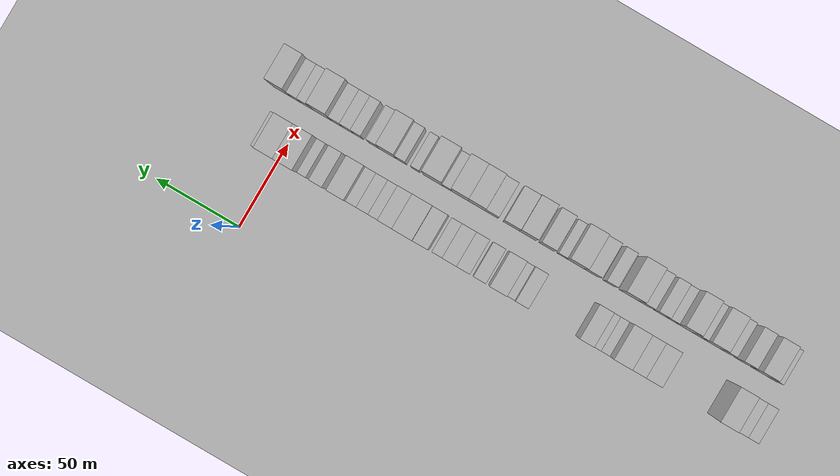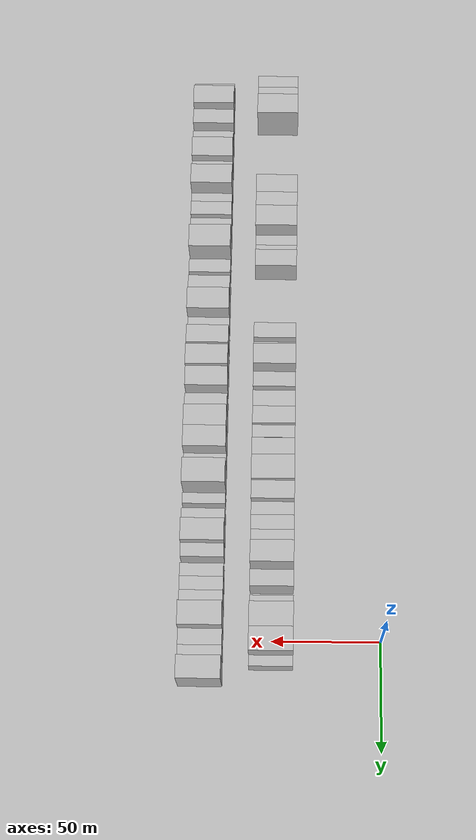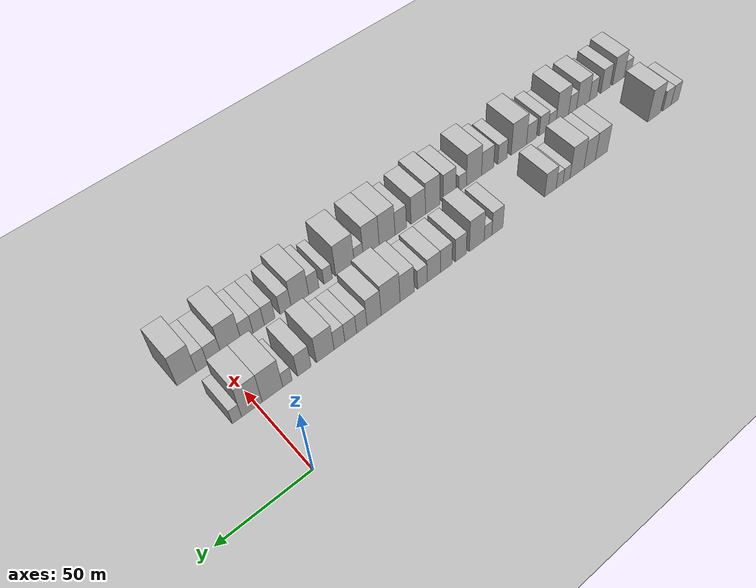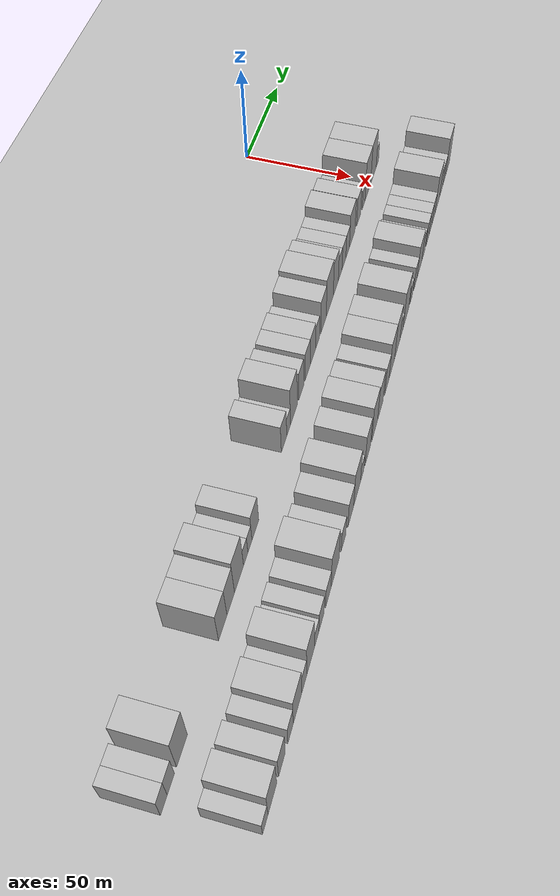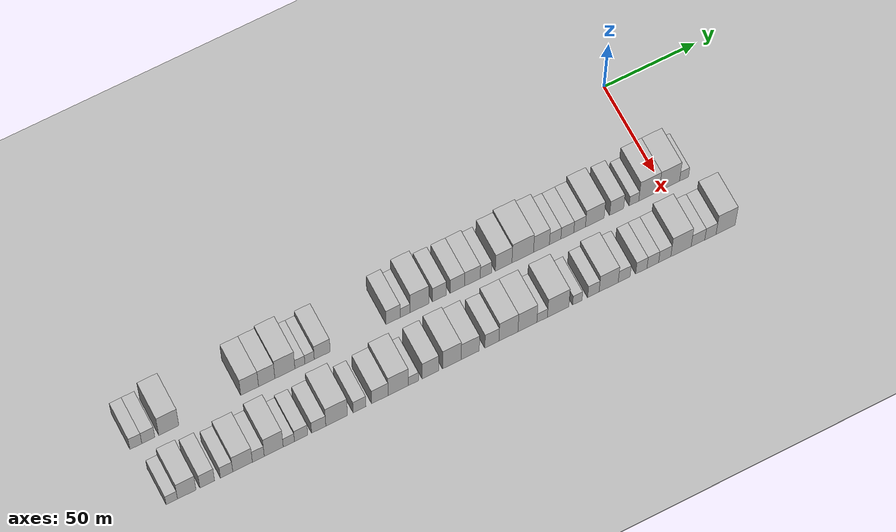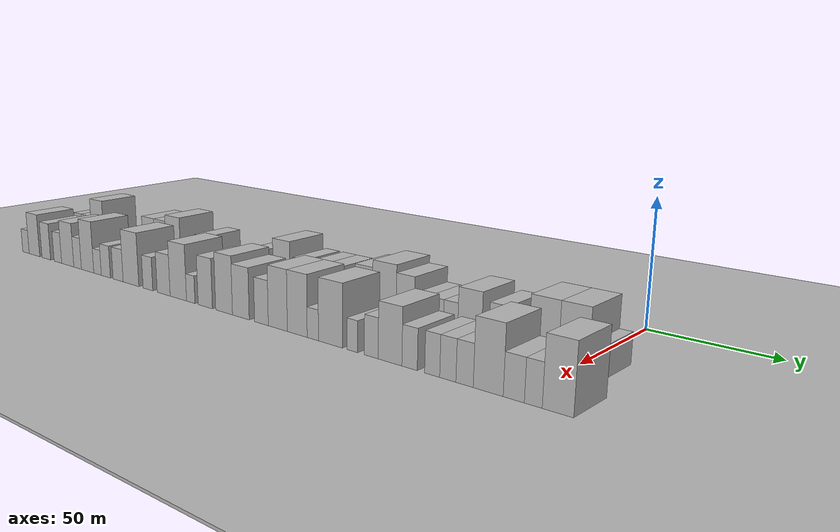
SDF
<sdf version="1.6">
 <world name="default">
  <include><name>ground_plane_1</name><uri>model://HANNAS_ground_plane</uri></include>
  <include>
   <name>ground_plane_2</name>
   <uri>model://HANNAS_ground_plane</uri>
   <pose>100 0 0  0 0 0</pose>
  </include>
  <model name="building_1">
   <static>1</static>
   <pose>50.0000 -280.9047 0 0.000000 0.000000 0.000000</pose>
   <link name="link">
    <pose>0 0 7.50 0 0 0</pose>
    <collision name="collision"><geometry><box><size>20.0000 6.1906 15.0000</size></box></geometry></collision>
    <visual name="visual">
     <cast_shadows>0</cast_shadows>
     <geometry><box><size>20.0000 6.1906 15.0000</size></box></geometry>
     <material>
      <script>
       <uri>model://HANNAS_wall/materials/scripts</uri>
       <uri>model://HANNAS_wall/materials/textures</uri>
       <name>vrc/HANNAS_wall</name>
      </script>
     </material>
    </visual>
   </link>
  </model>
  <model name="building_2">
   <static>1</static>
   <pose>50.0000 -274.4337 0 0.000000 0.000000 0.000000</pose>
   <link name="link">
    <pose>0 0 7.50 0 0 0</pose>
    <collision name="collision"><geometry><box><size>20.0000 6.7513 15.0000</size></box></geometry></collision>
    <visual name="visual">
     <cast_shadows>0</cast_shadows>
     <geometry><box><size>20.0000 6.7513 15.0000</size></box></geometry>
     <material>
      <script>
       <uri>model://HANNAS_wall/materials/scripts</uri>
       <uri>model://HANNAS_wall/materials/textures</uri>
       <name>vrc/HANNAS_wall</name>
      </script>
     </material>
    </visual>
   </link>
  </model>
  <model name="building_3">
   <static>1</static>
   <pose>50.0000 -263.8113 0 0.000000 0.000000 0.000000</pose>
   <link name="link">
    <pose>0 0 12.00 0 0 0</pose>
    <collision name="collision"><geometry><box><size>20.0000 10.4937 24.0000</size></box></geometry></collision>
    <visual name="visual">
     <cast_shadows>0</cast_shadows>
     <geometry><box><size>20.0000 10.4937 24.0000</size></box></geometry>
     <material>
      <script>
       <uri>model://HANNAS_wall/materials/scripts</uri>
       <uri>model://HANNAS_wall/materials/textures</uri>
       <name>vrc/HANNAS_wall</name>
      </script>
     </material>
    </visual>
   </link>
  </model>
  <model name="building_4">
   <static>1</static>
   <pose>50.0000 -221.5287 0 0.000000 0.000000 0.000000</pose>
   <link name="link">
    <pose>0 0 10.50 0 0 0</pose>
    <collision name="collision"><geometry><box><size>20.0000 9.3572 21.0000</size></box></geometry></collision>
    <visual name="visual">
     <cast_shadows>0</cast_shadows>
     <geometry><box><size>20.0000 9.3572 21.0000</size></box></geometry>
     <material>
      <script>
       <uri>model://HANNAS_wall/materials/scripts</uri>
       <uri>model://HANNAS_wall/materials/textures</uri>
       <name>vrc/HANNAS_wall</name>
      </script>
     </material>
    </visual>
   </link>
  </model>
  <model name="building_5">
   <static>1</static>
   <pose>50.0000 -212.5647 0 0.000000 0.000000 0.000000</pose>
   <link name="link">
    <pose>0 0 10.50 0 0 0</pose>
    <collision name="collision"><geometry><box><size>20.0000 8.5709 21.0000</size></box></geometry></collision>
    <visual name="visual">
     <cast_shadows>0</cast_shadows>
     <geometry><box><size>20.0000 8.5709 21.0000</size></box></geometry>
     <material>
      <script>
       <uri>model://HANNAS_wall/materials/scripts</uri>
       <uri>model://HANNAS_wall/materials/textures</uri>
       <name>vrc/HANNAS_wall</name>
      </script>
     </material>
    </visual>
   </link>
  </model>
  <model name="building_6">
   <static>1</static>
   <pose>50.0000 -203.0101 0 0.000000 0.000000 0.000000</pose>
   <link name="link">
    <pose>0 0 12.00 0 0 0</pose>
    <collision name="collision"><geometry><box><size>20.0000 10.5382 24.0000</size></box></geometry></collision>
    <visual name="visual">
     <cast_shadows>0</cast_shadows>
     <geometry><box><size>20.0000 10.5382 24.0000</size></box></geometry>
     <material>
      <script>
       <uri>model://HANNAS_wall/materials/scripts</uri>
       <uri>model://HANNAS_wall/materials/textures</uri>
       <name>vrc/HANNAS_wall</name>
      </script>
     </material>
    </visual>
   </link>
  </model>
  <model name="building_7">
   <static>1</static>
   <pose>50.0000 -195.1155 0 0.000000 0.000000 0.000000</pose>
   <link name="link">
    <pose>0 0 6.00 0 0 0</pose>
    <collision name="collision"><geometry><box><size>20.0000 5.2510 12.0000</size></box></geometry></collision>
    <visual name="visual">
     <cast_shadows>0</cast_shadows>
     <geometry><box><size>20.0000 5.2510 12.0000</size></box></geometry>
     <material>
      <script>
       <uri>model://HANNAS_wall/materials/scripts</uri>
       <uri>model://HANNAS_wall/materials/textures</uri>
       <name>vrc/HANNAS_wall</name>
      </script>
     </material>
    </visual>
   </link>
  </model>
  <model name="building_8">
   <static>1</static>
   <pose>50.0000 -190.0040 0 0.000000 0.000000 0.000000</pose>
   <link name="link">
    <pose>0 0 6.00 0 0 0</pose>
    <collision name="collision"><geometry><box><size>20.0000 4.9719 12.0000</size></box></geometry></collision>
    <visual name="visual">
     <cast_shadows>0</cast_shadows>
     <geometry><box><size>20.0000 4.9719 12.0000</size></box></geometry>
     <material>
      <script>
       <uri>model://HANNAS_wall/materials/scripts</uri>
       <uri>model://HANNAS_wall/materials/textures</uri>
       <name>vrc/HANNAS_wall</name>
      </script>
     </material>
    </visual>
   </link>
  </model>
  <model name="building_9">
   <static>1</static>
   <pose>50.0000 -183.3172 0 0.000000 0.000000 0.000000</pose>
   <link name="link">
    <pose>0 0 9.00 0 0 0</pose>
    <collision name="collision"><geometry><box><size>20.0000 8.4017 18.0000</size></box></geometry></collision>
    <visual name="visual">
     <cast_shadows>0</cast_shadows>
     <geometry><box><size>20.0000 8.4017 18.0000</size></box></geometry>
     <material>
      <script>
       <uri>model://HANNAS_wall/materials/scripts</uri>
       <uri>model://HANNAS_wall/materials/textures</uri>
       <name>vrc/HANNAS_wall</name>
      </script>
     </material>
    </visual>
   </link>
  </model>
  <model name="building_10">
   <static>1</static>
   <pose>50.0000 -145.7531 0 0.000000 0.000000 0.000000</pose>
   <link name="link">
    <pose>0 0 9.00 0 0 0</pose>
    <collision name="collision"><geometry><box><size>20.0000 7.5755 18.0000</size></box></geometry></collision>
    <visual name="visual">
     <cast_shadows>0</cast_shadows>
     <geometry><box><size>20.0000 7.5755 18.0000</size></box></geometry>
     <material>
      <script>
       <uri>model://HANNAS_wall/materials/scripts</uri>
       <uri>model://HANNAS_wall/materials/textures</uri>
       <name>vrc/HANNAS_wall</name>
      </script>
     </material>
    </visual>
   </link>
  </model>
  <model name="building_11">
   <static>1</static>
   <pose>50.0000 -139.3310 0 0.000000 0.000000 0.000000</pose>
   <link name="link">
    <pose>0 0 6.00 0 0 0</pose>
    <collision name="collision"><geometry><box><size>20.0000 5.2685 12.0000</size></box></geometry></collision>
    <visual name="visual">
     <cast_shadows>0</cast_shadows>
     <geometry><box><size>20.0000 5.2685 12.0000</size></box></geometry>
     <material>
      <script>
       <uri>model://HANNAS_wall/materials/scripts</uri>
       <uri>model://HANNAS_wall/materials/textures</uri>
       <name>vrc/HANNAS_wall</name>
      </script>
     </material>
    </visual>
   </link>
  </model>
  <model name="building_12">
   <static>1</static>
   <pose>50.0000 -131.7397 0 0.000000 0.000000 0.000000</pose>
   <link name="link">
    <pose>0 0 12.00 0 0 0</pose>
    <collision name="collision"><geometry><box><size>20.0000 9.9141 24.0000</size></box></geometry></collision>
    <visual name="visual">
     <cast_shadows>0</cast_shadows>
     <geometry><box><size>20.0000 9.9141 24.0000</size></box></geometry>
     <material>
      <script>
       <uri>model://HANNAS_wall/materials/scripts</uri>
       <uri>model://HANNAS_wall/materials/textures</uri>
       <name>vrc/HANNAS_wall</name>
      </script>
     </material>
    </visual>
   </link>
  </model>
  <model name="building_13">
   <static>1</static>
   <pose>50.0000 -121.1283 0 0.000000 0.000000 0.000000</pose>
   <link name="link">
    <pose>0 0 9.00 0 0 0</pose>
    <collision name="collision"><geometry><box><size>20.0000 7.3088 18.0000</size></box></geometry></collision>
    <visual name="visual">
     <cast_shadows>0</cast_shadows>
     <geometry><box><size>20.0000 7.3088 18.0000</size></box></geometry>
     <material>
      <script>
       <uri>model://HANNAS_wall/materials/scripts</uri>
       <uri>model://HANNAS_wall/materials/textures</uri>
       <name>vrc/HANNAS_wall</name>
      </script>
     </material>
    </visual>
   </link>
  </model>
  <model name="building_14">
   <static>1</static>
   <pose>50.0000 -111.5930 0 0.000000 0.000000 0.000000</pose>
   <link name="link">
    <pose>0 0 9.00 0 0 0</pose>
    <collision name="collision"><geometry><box><size>20.0000 7.7617 18.0000</size></box></geometry></collision>
    <visual name="visual">
     <cast_shadows>0</cast_shadows>
     <geometry><box><size>20.0000 7.7617 18.0000</size></box></geometry>
     <material>
      <script>
       <uri>model://HANNAS_wall/materials/scripts</uri>
       <uri>model://HANNAS_wall/materials/textures</uri>
       <name>vrc/HANNAS_wall</name>
      </script>
     </material>
    </visual>
   </link>
  </model>
  <model name="building_15">
   <static>1</static>
   <pose>50.0000 -103.5192 0 0.000000 0.000000 0.000000</pose>
   <link name="link">
    <pose>0 0 9.00 0 0 0</pose>
    <collision name="collision"><geometry><box><size>20.0000 8.3860 18.0000</size></box></geometry></collision>
    <visual name="visual">
     <cast_shadows>0</cast_shadows>
     <geometry><box><size>20.0000 8.3860 18.0000</size></box></geometry>
     <material>
      <script>
       <uri>model://HANNAS_wall/materials/scripts</uri>
       <uri>model://HANNAS_wall/materials/textures</uri>
       <name>vrc/HANNAS_wall</name>
      </script>
     </material>
    </visual>
   </link>
  </model>
  <model name="building_16">
   <static>1</static>
   <pose>50.0000 -96.2797 0 0.000000 0.000000 0.000000</pose>
   <link name="link">
    <pose>0 0 7.50 0 0 0</pose>
    <collision name="collision"><geometry><box><size>20.0000 6.0930 15.0000</size></box></geometry></collision>
    <visual name="visual">
     <cast_shadows>0</cast_shadows>
     <geometry><box><size>20.0000 6.0930 15.0000</size></box></geometry>
     <material>
      <script>
       <uri>model://HANNAS_wall/materials/scripts</uri>
       <uri>model://HANNAS_wall/materials/textures</uri>
       <name>vrc/HANNAS_wall</name>
      </script>
     </material>
    </visual>
   </link>
  </model>
  <model name="building_17">
   <static>1</static>
   <pose>50.0000 -86.7857 0 0.000000 0.000000 0.000000</pose>
   <link name="link">
    <pose>0 0 10.50 0 0 0</pose>
    <collision name="collision"><geometry><box><size>20.0000 8.8949 21.0000</size></box></geometry></collision>
    <visual name="visual">
     <cast_shadows>0</cast_shadows>
     <geometry><box><size>20.0000 8.8949 21.0000</size></box></geometry>
     <material>
      <script>
       <uri>model://HANNAS_wall/materials/scripts</uri>
       <uri>model://HANNAS_wall/materials/textures</uri>
       <name>vrc/HANNAS_wall</name>
      </script>
     </material>
    </visual>
   </link>
  </model>
  <model name="building_18">
   <static>1</static>
   <pose>50.0000 -76.5486 0 0.000000 0.000000 0.000000</pose>
   <link name="link">
    <pose>0 0 12.00 0 0 0</pose>
    <collision name="collision"><geometry><box><size>20.0000 11.5792 24.0000</size></box></geometry></collision>
    <visual name="visual">
     <cast_shadows>0</cast_shadows>
     <geometry><box><size>20.0000 11.5792 24.0000</size></box></geometry>
     <material>
      <script>
       <uri>model://HANNAS_wall/materials/scripts</uri>
       <uri>model://HANNAS_wall/materials/textures</uri>
       <name>vrc/HANNAS_wall</name>
      </script>
     </material>
    </visual>
   </link>
  </model>
  <model name="building_19">
   <static>1</static>
   <pose>50.0000 -66.4720 0 0.000000 0.000000 0.000000</pose>
   <link name="link">
    <pose>0 0 10.50 0 0 0</pose>
    <collision name="collision"><geometry><box><size>20.0000 8.5740 21.0000</size></box></geometry></collision>
    <visual name="visual">
     <cast_shadows>0</cast_shadows>
     <geometry><box><size>20.0000 8.5740 21.0000</size></box></geometry>
     <material>
      <script>
       <uri>model://HANNAS_wall/materials/scripts</uri>
       <uri>model://HANNAS_wall/materials/textures</uri>
       <name>vrc/HANNAS_wall</name>
      </script>
     </material>
    </visual>
   </link>
  </model>
  <model name="building_20">
   <static>1</static>
   <pose>50.0000 -59.0821 0 0.000000 0.000000 0.000000</pose>
   <link name="link">
    <pose>0 0 7.50 0 0 0</pose>
    <collision name="collision"><geometry><box><size>20.0000 6.2059 15.0000</size></box></geometry></collision>
    <visual name="visual">
     <cast_shadows>0</cast_shadows>
     <geometry><box><size>20.0000 6.2059 15.0000</size></box></geometry>
     <material>
      <script>
       <uri>model://HANNAS_wall/materials/scripts</uri>
       <uri>model://HANNAS_wall/materials/textures</uri>
       <name>vrc/HANNAS_wall</name>
      </script>
     </material>
    </visual>
   </link>
  </model>
  <model name="building_21">
   <static>1</static>
   <pose>50.0000 -52.5241 0 0.000000 0.000000 0.000000</pose>
   <link name="link">
    <pose>0 0 7.50 0 0 0</pose>
    <collision name="collision"><geometry><box><size>20.0000 6.9101 15.0000</size></box></geometry></collision>
    <visual name="visual">
     <cast_shadows>0</cast_shadows>
     <geometry><box><size>20.0000 6.9101 15.0000</size></box></geometry>
     <material>
      <script>
       <uri>model://HANNAS_wall/materials/scripts</uri>
       <uri>model://HANNAS_wall/materials/textures</uri>
       <name>vrc/HANNAS_wall</name>
      </script>
     </material>
    </visual>
   </link>
  </model>
  <model name="building_22">
   <static>1</static>
   <pose>50.0000 -45.9291 0 0.000000 0.000000 0.000000</pose>
   <link name="link">
    <pose>0 0 7.50 0 0 0</pose>
    <collision name="collision"><geometry><box><size>20.0000 6.2798 15.0000</size></box></geometry></collision>
    <visual name="visual">
     <cast_shadows>0</cast_shadows>
     <geometry><box><size>20.0000 6.2798 15.0000</size></box></geometry>
     <material>
      <script>
       <uri>model://HANNAS_wall/materials/scripts</uri>
       <uri>model://HANNAS_wall/materials/textures</uri>
       <name>vrc/HANNAS_wall</name>
      </script>
     </material>
    </visual>
   </link>
  </model>
  <model name="building_23">
   <static>1</static>
   <pose>50.0000 -37.7250 0 0.000000 0.000000 0.000000</pose>
   <link name="link">
    <pose>0 0 10.50 0 0 0</pose>
    <collision name="collision"><geometry><box><size>20.0000 10.1284 21.0000</size></box></geometry></collision>
    <visual name="visual">
     <cast_shadows>0</cast_shadows>
     <geometry><box><size>20.0000 10.1284 21.0000</size></box></geometry>
     <material>
      <script>
       <uri>model://HANNAS_wall/materials/scripts</uri>
       <uri>model://HANNAS_wall/materials/textures</uri>
       <name>vrc/HANNAS_wall</name>
      </script>
     </material>
    </visual>
   </link>
  </model>
  <model name="building_24">
   <static>1</static>
   <pose>50.0000 -25.8488 0 0.000000 0.000000 0.000000</pose>
   <link name="link">
    <pose>0 0 9.00 0 0 0</pose>
    <collision name="collision"><geometry><box><size>20.0000 7.6238 18.0000</size></box></geometry></collision>
    <visual name="visual">
     <cast_shadows>0</cast_shadows>
     <geometry><box><size>20.0000 7.6238 18.0000</size></box></geometry>
     <material>
      <script>
       <uri>model://HANNAS_wall/materials/scripts</uri>
       <uri>model://HANNAS_wall/materials/textures</uri>
       <name>vrc/HANNAS_wall</name>
      </script>
     </material>
    </visual>
   </link>
  </model>
  <model name="building_25">
   <static>1</static>
   <pose>50.0000 -16.4413 0 0.000000 0.000000 0.000000</pose>
   <link name="link">
    <pose>0 0 6.00 0 0 0</pose>
    <collision name="collision"><geometry><box><size>20.0000 5.1911 12.0000</size></box></geometry></collision>
    <visual name="visual">
     <cast_shadows>0</cast_shadows>
     <geometry><box><size>20.0000 5.1911 12.0000</size></box></geometry>
     <material>
      <script>
       <uri>model://HANNAS_wall/materials/scripts</uri>
       <uri>model://HANNAS_wall/materials/textures</uri>
       <name>vrc/HANNAS_wall</name>
      </script>
     </material>
    </visual>
   </link>
  </model>
  <model name="building_26">
   <static>1</static>
   <pose>50.0000 -8.2512 0 0.000000 0.000000 0.000000</pose>
   <link name="link">
    <pose>0 0 12.00 0 0 0</pose>
    <collision name="collision"><geometry><box><size>20.0000 11.1893 24.0000</size></box></geometry></collision>
    <visual name="visual">
     <cast_shadows>0</cast_shadows>
     <geometry><box><size>20.0000 11.1893 24.0000</size></box></geometry>
     <material>
      <script>
       <uri>model://HANNAS_wall/materials/scripts</uri>
       <uri>model://HANNAS_wall/materials/textures</uri>
       <name>vrc/HANNAS_wall</name>
      </script>
     </material>
    </visual>
   </link>
  </model>
  <model name="building_27">
   <static>1</static>
   <pose>50.0000 2.8335 0 0.000000 0.000000 0.000000</pose>
   <link name="link">
    <pose>0 0 12.00 0 0 0</pose>
    <collision name="collision"><geometry><box><size>20.0000 10.9800 24.0000</size></box></geometry></collision>
    <visual name="visual">
     <cast_shadows>0</cast_shadows>
     <geometry><box><size>20.0000 10.9800 24.0000</size></box></geometry>
     <material>
      <script>
       <uri>model://HANNAS_wall/materials/scripts</uri>
       <uri>model://HANNAS_wall/materials/textures</uri>
       <name>vrc/HANNAS_wall</name>
      </script>
     </material>
    </visual>
   </link>
  </model>
  <model name="building_28">
   <static>1</static>
   <pose>50.0000 10.7881 0 0.000000 0.000000 0.000000</pose>
   <link name="link">
    <pose>0 0 6.00 0 0 0</pose>
    <collision name="collision"><geometry><box><size>20.0000 4.9293 12.0000</size></box></geometry></collision>
    <visual name="visual">
     <cast_shadows>0</cast_shadows>
     <geometry><box><size>20.0000 4.9293 12.0000</size></box></geometry>
     <material>
      <script>
       <uri>model://HANNAS_wall/materials/scripts</uri>
       <uri>model://HANNAS_wall/materials/textures</uri>
       <name>vrc/HANNAS_wall</name>
      </script>
     </material>
    </visual>
   </link>
  </model>
  <model name="building_61">
   <static>1</static>
   <pose>82.0000 -278.0445 0 0.000000 0.000000 0.000000</pose>
   <link name="link">
    <pose>0 0 6.00 0 0 0</pose>
    <collision name="collision"><geometry><box><size>20.0000 5.9109 12.0000</size></box></geometry></collision>
    <visual name="visual">
     <cast_shadows>0</cast_shadows>
     <geometry><box><size>20.0000 5.9109 12.0000</size></box></geometry>
     <material>
      <script>
       <uri>model://HANNAS_wall/materials/scripts</uri>
       <uri>model://HANNAS_wall/materials/textures</uri>
       <name>vrc/HANNAS_wall</name>
      </script>
     </material>
    </visual>
   </link>
  </model>
  <model name="building_62">
   <static>1</static>
   <pose>82.0000 -270.2772 0 0.000000 0.000000 0.000000</pose>
   <link name="link">
    <pose>0 0 10.50 0 0 0</pose>
    <collision name="collision"><geometry><box><size>20.0000 9.6237 21.0000</size></box></geometry></collision>
    <visual name="visual">
     <cast_shadows>0</cast_shadows>
     <geometry><box><size>20.0000 9.6237 21.0000</size></box></geometry>
     <material>
      <script>
       <uri>model://HANNAS_wall/materials/scripts</uri>
       <uri>model://HANNAS_wall/materials/textures</uri>
       <name>vrc/HANNAS_wall</name>
      </script>
     </material>
    </visual>
   </link>
  </model>
  <model name="building_63">
   <static>1</static>
   <pose>82.0000 -259.6411 0 0.000000 0.000000 0.000000</pose>
   <link name="link">
    <pose>0 0 9.00 0 0 0</pose>
    <collision name="collision"><geometry><box><size>20.0000 7.6485 18.0000</size></box></geometry></collision>
    <visual name="visual">
     <cast_shadows>0</cast_shadows>
     <geometry><box><size>20.0000 7.6485 18.0000</size></box></geometry>
     <material>
      <script>
       <uri>model://HANNAS_wall/materials/scripts</uri>
       <uri>model://HANNAS_wall/materials/textures</uri>
       <name>vrc/HANNAS_wall</name>
      </script>
     </material>
    </visual>
   </link>
  </model>
  <model name="building_64">
   <static>1</static>
   <pose>82.0000 -249.5891 0 0.000000 0.000000 0.000000</pose>
   <link name="link">
    <pose>0 0 7.50 0 0 0</pose>
    <collision name="collision"><geometry><box><size>20.0000 6.4555 15.0000</size></box></geometry></collision>
    <visual name="visual">
     <cast_shadows>0</cast_shadows>
     <geometry><box><size>20.0000 6.4555 15.0000</size></box></geometry>
     <material>
      <script>
       <uri>model://HANNAS_wall/materials/scripts</uri>
       <uri>model://HANNAS_wall/materials/textures</uri>
       <name>vrc/HANNAS_wall</name>
      </script>
     </material>
    </visual>
   </link>
  </model>
  <model name="building_65">
   <static>1</static>
   <pose>82.0000 -241.2557 0 0.000000 0.000000 0.000000</pose>
   <link name="link">
    <pose>0 0 10.50 0 0 0</pose>
    <collision name="collision"><geometry><box><size>20.0000 10.2112 21.0000</size></box></geometry></collision>
    <visual name="visual">
     <cast_shadows>0</cast_shadows>
     <geometry><box><size>20.0000 10.2112 21.0000</size></box></geometry>
     <material>
      <script>
       <uri>model://HANNAS_wall/materials/scripts</uri>
       <uri>model://HANNAS_wall/materials/textures</uri>
       <name>vrc/HANNAS_wall</name>
      </script>
     </material>
    </visual>
   </link>
  </model>
  <model name="building_66">
   <static>1</static>
   <pose>82.0000 -233.0473 0 0.000000 0.000000 0.000000</pose>
   <link name="link">
    <pose>0 0 7.50 0 0 0</pose>
    <collision name="collision"><geometry><box><size>20.0000 6.2056 15.0000</size></box></geometry></collision>
    <visual name="visual">
     <cast_shadows>0</cast_shadows>
     <geometry><box><size>20.0000 6.2056 15.0000</size></box></geometry>
     <material>
      <script>
       <uri>model://HANNAS_wall/materials/scripts</uri>
       <uri>model://HANNAS_wall/materials/textures</uri>
       <name>vrc/HANNAS_wall</name>
      </script>
     </material>
    </visual>
   </link>
  </model>
  <model name="building_67">
   <static>1</static>
   <pose>82.0000 -225.0000 0 0.000000 0.000000 0.000000</pose>
   <link name="link">
    <pose>0 0 12.00 0 0 0</pose>
    <collision name="collision"><geometry><box><size>20.0000 9.8891 24.0000</size></box></geometry></collision>
    <visual name="visual">
     <cast_shadows>0</cast_shadows>
     <geometry><box><size>20.0000 9.8891 24.0000</size></box></geometry>
     <material>
      <script>
       <uri>model://HANNAS_wall/materials/scripts</uri>
       <uri>model://HANNAS_wall/materials/textures</uri>
       <name>vrc/HANNAS_wall</name>
      </script>
     </material>
    </visual>
   </link>
  </model>
  <model name="building_68">
   <static>1</static>
   <pose>82.0000 -217.1194 0 0.000000 0.000000 0.000000</pose>
   <link name="link">
    <pose>0 0 6.00 0 0 0</pose>
    <collision name="collision"><geometry><box><size>20.0000 5.8720 12.0000</size></box></geometry></collision>
    <visual name="visual">
     <cast_shadows>0</cast_shadows>
     <geometry><box><size>20.0000 5.8720 12.0000</size></box></geometry>
     <material>
      <script>
       <uri>model://HANNAS_wall/materials/scripts</uri>
       <uri>model://HANNAS_wall/materials/textures</uri>
       <name>vrc/HANNAS_wall</name>
      </script>
     </material>
    </visual>
   </link>
  </model>
  <model name="building_69">
   <static>1</static>
   <pose>82.0000 -210.7004 0 0.000000 0.000000 0.000000</pose>
   <link name="link">
    <pose>0 0 7.50 0 0 0</pose>
    <collision name="collision"><geometry><box><size>20.0000 6.9660 15.0000</size></box></geometry></collision>
    <visual name="visual">
     <cast_shadows>0</cast_shadows>
     <geometry><box><size>20.0000 6.9660 15.0000</size></box></geometry>
     <material>
      <script>
       <uri>model://HANNAS_wall/materials/scripts</uri>
       <uri>model://HANNAS_wall/materials/textures</uri>
       <name>vrc/HANNAS_wall</name>
      </script>
     </material>
    </visual>
   </link>
  </model>
  <model name="building_70">
   <static>1</static>
   <pose>82.0000 -201.4727 0 0.000000 0.000000 0.000000</pose>
   <link name="link">
    <pose>0 0 7.50 0 0 0</pose>
    <collision name="collision"><geometry><box><size>20.0000 7.4895 15.0000</size></box></geometry></collision>
    <visual name="visual">
     <cast_shadows>0</cast_shadows>
     <geometry><box><size>20.0000 7.4895 15.0000</size></box></geometry>
     <material>
      <script>
       <uri>model://HANNAS_wall/materials/scripts</uri>
       <uri>model://HANNAS_wall/materials/textures</uri>
       <name>vrc/HANNAS_wall</name>
      </script>
     </material>
    </visual>
   </link>
  </model>
  <model name="building_71">
   <static>1</static>
   <pose>82.0000 -192.0567 0 0.000000 0.000000 0.000000</pose>
   <link name="link">
    <pose>0 0 12.00 0 0 0</pose>
    <collision name="collision"><geometry><box><size>20.0000 11.3423 24.0000</size></box></geometry></collision>
    <visual name="visual">
     <cast_shadows>0</cast_shadows>
     <geometry><box><size>20.0000 11.3423 24.0000</size></box></geometry>
     <material>
      <script>
       <uri>model://HANNAS_wall/materials/scripts</uri>
       <uri>model://HANNAS_wall/materials/textures</uri>
       <name>vrc/HANNAS_wall</name>
      </script>
     </material>
    </visual>
   </link>
  </model>
  <model name="building_72">
   <static>1</static>
   <pose>82.0000 -180.0124 0 0.000000 0.000000 0.000000</pose>
   <link name="link">
    <pose>0 0 7.50 0 0 0</pose>
    <collision name="collision"><geometry><box><size>20.0000 6.7464 15.0000</size></box></geometry></collision>
    <visual name="visual">
     <cast_shadows>0</cast_shadows>
     <geometry><box><size>20.0000 6.7464 15.0000</size></box></geometry>
     <material>
      <script>
       <uri>model://HANNAS_wall/materials/scripts</uri>
       <uri>model://HANNAS_wall/materials/textures</uri>
       <name>vrc/HANNAS_wall</name>
      </script>
     </material>
    </visual>
   </link>
  </model>
  <model name="building_73">
   <static>1</static>
   <pose>82.0000 -169.2916 0 0.000000 0.000000 0.000000</pose>
   <link name="link">
    <pose>0 0 9.00 0 0 0</pose>
    <collision name="collision"><geometry><box><size>20.0000 8.6951 18.0000</size></box></geometry></collision>
    <visual name="visual">
     <cast_shadows>0</cast_shadows>
     <geometry><box><size>20.0000 8.6951 18.0000</size></box></geometry>
     <material>
      <script>
       <uri>model://HANNAS_wall/materials/scripts</uri>
       <uri>model://HANNAS_wall/materials/textures</uri>
       <name>vrc/HANNAS_wall</name>
      </script>
     </material>
    </visual>
   </link>
  </model>
  <model name="building_74">
   <static>1</static>
   <pose>82.0000 -159.6134 0 0.000000 0.000000 0.000000</pose>
   <link name="link">
    <pose>0 0 12.00 0 0 0</pose>
    <collision name="collision"><geometry><box><size>20.0000 10.6612 24.0000</size></box></geometry></collision>
    <visual name="visual">
     <cast_shadows>0</cast_shadows>
     <geometry><box><size>20.0000 10.6612 24.0000</size></box></geometry>
     <material>
      <script>
       <uri>model://HANNAS_wall/materials/scripts</uri>
       <uri>model://HANNAS_wall/materials/textures</uri>
       <name>vrc/HANNAS_wall</name>
      </script>
     </material>
    </visual>
   </link>
  </model>
  <model name="building_75">
   <static>1</static>
   <pose>82.0000 -151.6181 0 0.000000 0.000000 0.000000</pose>
   <link name="link">
    <pose>0 0 6.00 0 0 0</pose>
    <collision name="collision"><geometry><box><size>20.0000 5.3294 12.0000</size></box></geometry></collision>
    <visual name="visual">
     <cast_shadows>0</cast_shadows>
     <geometry><box><size>20.0000 5.3294 12.0000</size></box></geometry>
     <material>
      <script>
       <uri>model://HANNAS_wall/materials/scripts</uri>
       <uri>model://HANNAS_wall/materials/textures</uri>
       <name>vrc/HANNAS_wall</name>
      </script>
     </material>
    </visual>
   </link>
  </model>
  <model name="building_76">
   <static>1</static>
   <pose>82.0000 -142.5731 0 0.000000 0.000000 0.000000</pose>
   <link name="link">
    <pose>0 0 10.50 0 0 0</pose>
    <collision name="collision"><geometry><box><size>20.0000 8.7606 21.0000</size></box></geometry></collision>
    <visual name="visual">
     <cast_shadows>0</cast_shadows>
     <geometry><box><size>20.0000 8.7606 21.0000</size></box></geometry>
     <material>
      <script>
       <uri>model://HANNAS_wall/materials/scripts</uri>
       <uri>model://HANNAS_wall/materials/textures</uri>
       <name>vrc/HANNAS_wall</name>
      </script>
     </material>
    </visual>
   </link>
  </model>
  <model name="building_77">
   <static>1</static>
   <pose>82.0000 -131.2455 0 0.000000 0.000000 0.000000</pose>
   <link name="link">
    <pose>0 0 12.00 0 0 0</pose>
    <collision name="collision"><geometry><box><size>20.0000 9.8945 24.0000</size></box></geometry></collision>
    <visual name="visual">
     <cast_shadows>0</cast_shadows>
     <geometry><box><size>20.0000 9.8945 24.0000</size></box></geometry>
     <material>
      <script>
       <uri>model://HANNAS_wall/materials/scripts</uri>
       <uri>model://HANNAS_wall/materials/textures</uri>
       <name>vrc/HANNAS_wall</name>
      </script>
     </material>
    </visual>
   </link>
  </model>
  <model name="building_78">
   <static>1</static>
   <pose>82.0000 -121.5096 0 0.000000 0.000000 0.000000</pose>
   <link name="link">
    <pose>0 0 10.50 0 0 0</pose>
    <collision name="collision"><geometry><box><size>20.0000 9.5774 21.0000</size></box></geometry></collision>
    <visual name="visual">
     <cast_shadows>0</cast_shadows>
     <geometry><box><size>20.0000 9.5774 21.0000</size></box></geometry>
     <material>
      <script>
       <uri>model://HANNAS_wall/materials/scripts</uri>
       <uri>model://HANNAS_wall/materials/textures</uri>
       <name>vrc/HANNAS_wall</name>
      </script>
     </material>
    </visual>
   </link>
  </model>
  <model name="building_79">
   <static>1</static>
   <pose>82.0000 -109.9732 0 0.000000 0.000000 0.000000</pose>
   <link name="link">
    <pose>0 0 9.00 0 0 0</pose>
    <collision name="collision"><geometry><box><size>20.0000 7.4953 18.0000</size></box></geometry></collision>
    <visual name="visual">
     <cast_shadows>0</cast_shadows>
     <geometry><box><size>20.0000 7.4953 18.0000</size></box></geometry>
     <material>
      <script>
       <uri>model://HANNAS_wall/materials/scripts</uri>
       <uri>model://HANNAS_wall/materials/textures</uri>
       <name>vrc/HANNAS_wall</name>
      </script>
     </material>
    </visual>
   </link>
  </model>
  <model name="building_80">
   <static>1</static>
   <pose>82.0000 -101.1580 0 0.000000 0.000000 0.000000</pose>
   <link name="link">
    <pose>0 0 12.00 0 0 0</pose>
    <collision name="collision"><geometry><box><size>20.0000 10.1350 24.0000</size></box></geometry></collision>
    <visual name="visual">
     <cast_shadows>0</cast_shadows>
     <geometry><box><size>20.0000 10.1350 24.0000</size></box></geometry>
     <material>
      <script>
       <uri>model://HANNAS_wall/materials/scripts</uri>
       <uri>model://HANNAS_wall/materials/textures</uri>
       <name>vrc/HANNAS_wall</name>
      </script>
     </material>
    </visual>
   </link>
  </model>
  <model name="building_81">
   <static>1</static>
   <pose>82.0000 -91.0268 0 0.000000 0.000000 0.000000</pose>
   <link name="link">
    <pose>0 0 12.00 0 0 0</pose>
    <collision name="collision"><geometry><box><size>20.0000 10.1274 24.0000</size></box></geometry></collision>
    <visual name="visual">
     <cast_shadows>0</cast_shadows>
     <geometry><box><size>20.0000 10.1274 24.0000</size></box></geometry>
     <material>
      <script>
       <uri>model://HANNAS_wall/materials/scripts</uri>
       <uri>model://HANNAS_wall/materials/textures</uri>
       <name>vrc/HANNAS_wall</name>
      </script>
     </material>
    </visual>
   </link>
  </model>
  <model name="building_82">
   <static>1</static>
   <pose>82.0000 -83.1672 0 0.000000 0.000000 0.000000</pose>
   <link name="link">
    <pose>0 0 6.00 0 0 0</pose>
    <collision name="collision"><geometry><box><size>20.0000 5.5919 12.0000</size></box></geometry></collision>
    <visual name="visual">
     <cast_shadows>0</cast_shadows>
     <geometry><box><size>20.0000 5.5919 12.0000</size></box></geometry>
     <material>
      <script>
       <uri>model://HANNAS_wall/materials/scripts</uri>
       <uri>model://HANNAS_wall/materials/textures</uri>
       <name>vrc/HANNAS_wall</name>
      </script>
     </material>
    </visual>
   </link>
  </model>
  <model name="building_83">
   <static>1</static>
   <pose>82.0000 -74.6072 0 0.000000 0.000000 0.000000</pose>
   <link name="link">
    <pose>0 0 12.00 0 0 0</pose>
    <collision name="collision"><geometry><box><size>20.0000 11.5281 24.0000</size></box></geometry></collision>
    <visual name="visual">
     <cast_shadows>0</cast_shadows>
     <geometry><box><size>20.0000 11.5281 24.0000</size></box></geometry>
     <material>
      <script>
       <uri>model://HANNAS_wall/materials/scripts</uri>
       <uri>model://HANNAS_wall/materials/textures</uri>
       <name>vrc/HANNAS_wall</name>
      </script>
     </material>
    </visual>
   </link>
  </model>
  <model name="building_84">
   <static>1</static>
   <pose>82.0000 -64.3022 0 0.000000 0.000000 0.000000</pose>
   <link name="link">
    <pose>0 0 6.00 0 0 0</pose>
    <collision name="collision"><geometry><box><size>20.0000 5.0819 12.0000</size></box></geometry></collision>
    <visual name="visual">
     <cast_shadows>0</cast_shadows>
     <geometry><box><size>20.0000 5.0819 12.0000</size></box></geometry>
     <material>
      <script>
       <uri>model://HANNAS_wall/materials/scripts</uri>
       <uri>model://HANNAS_wall/materials/textures</uri>
       <name>vrc/HANNAS_wall</name>
      </script>
     </material>
    </visual>
   </link>
  </model>
  <model name="building_85">
   <static>1</static>
   <pose>82.0000 -55.6899 0 0.000000 0.000000 0.000000</pose>
   <link name="link">
    <pose>0 0 7.50 0 0 0</pose>
    <collision name="collision"><geometry><box><size>20.0000 6.1427 15.0000</size></box></geometry></collision>
    <visual name="visual">
     <cast_shadows>0</cast_shadows>
     <geometry><box><size>20.0000 6.1427 15.0000</size></box></geometry>
     <material>
      <script>
       <uri>model://HANNAS_wall/materials/scripts</uri>
       <uri>model://HANNAS_wall/materials/textures</uri>
       <name>vrc/HANNAS_wall</name>
      </script>
     </material>
    </visual>
   </link>
  </model>
  <model name="building_86">
   <static>1</static>
   <pose>82.0000 -47.4825 0 0.000000 0.000000 0.000000</pose>
   <link name="link">
    <pose>0 0 10.50 0 0 0</pose>
    <collision name="collision"><geometry><box><size>20.0000 10.2721 21.0000</size></box></geometry></collision>
    <visual name="visual">
     <cast_shadows>0</cast_shadows>
     <geometry><box><size>20.0000 10.2721 21.0000</size></box></geometry>
     <material>
      <script>
       <uri>model://HANNAS_wall/materials/scripts</uri>
       <uri>model://HANNAS_wall/materials/textures</uri>
       <name>vrc/HANNAS_wall</name>
      </script>
     </material>
    </visual>
   </link>
  </model>
  <model name="building_87">
   <static>1</static>
   <pose>82.0000 -39.1265 0 0.000000 0.000000 0.000000</pose>
   <link name="link">
    <pose>0 0 7.50 0 0 0</pose>
    <collision name="collision"><geometry><box><size>20.0000 6.4400 15.0000</size></box></geometry></collision>
    <visual name="visual">
     <cast_shadows>0</cast_shadows>
     <geometry><box><size>20.0000 6.4400 15.0000</size></box></geometry>
     <material>
      <script>
       <uri>model://HANNAS_wall/materials/scripts</uri>
       <uri>model://HANNAS_wall/materials/textures</uri>
       <name>vrc/HANNAS_wall</name>
      </script>
     </material>
    </visual>
   </link>
  </model>
  <model name="building_88">
   <static>1</static>
   <pose>82.0000 -29.8760 0 0.000000 0.000000 0.000000</pose>
   <link name="link">
    <pose>0 0 7.50 0 0 0</pose>
    <collision name="collision"><geometry><box><size>20.0000 6.0609 15.0000</size></box></geometry></collision>
    <visual name="visual">
     <cast_shadows>0</cast_shadows>
     <geometry><box><size>20.0000 6.0609 15.0000</size></box></geometry>
     <material>
      <script>
       <uri>model://HANNAS_wall/materials/scripts</uri>
       <uri>model://HANNAS_wall/materials/textures</uri>
       <name>vrc/HANNAS_wall</name>
      </script>
     </material>
    </visual>
   </link>
  </model>
  <model name="building_89">
   <static>1</static>
   <pose>82.0000 -23.6777 0 0.000000 0.000000 0.000000</pose>
   <link name="link">
    <pose>0 0 7.50 0 0 0</pose>
    <collision name="collision"><geometry><box><size>20.0000 6.3357 15.0000</size></box></geometry></collision>
    <visual name="visual">
     <cast_shadows>0</cast_shadows>
     <geometry><box><size>20.0000 6.3357 15.0000</size></box></geometry>
     <material>
      <script>
       <uri>model://HANNAS_wall/materials/scripts</uri>
       <uri>model://HANNAS_wall/materials/textures</uri>
       <name>vrc/HANNAS_wall</name>
      </script>
     </material>
    </visual>
   </link>
  </model>
  <model name="building_90">
   <static>1</static>
   <pose>82.0000 -17.2185 0 0.000000 0.000000 0.000000</pose>
   <link name="link">
    <pose>0 0 7.50 0 0 0</pose>
    <collision name="collision"><geometry><box><size>20.0000 6.5828 15.0000</size></box></geometry></collision>
    <visual name="visual">
     <cast_shadows>0</cast_shadows>
     <geometry><box><size>20.0000 6.5828 15.0000</size></box></geometry>
     <material>
      <script>
       <uri>model://HANNAS_wall/materials/scripts</uri>
       <uri>model://HANNAS_wall/materials/textures</uri>
       <name>vrc/HANNAS_wall</name>
      </script>
     </material>
    </visual>
   </link>
  </model>
  <model name="building_91">
   <static>1</static>
   <pose>82.0000 -8.4304 0 0.000000 0.000000 0.000000</pose>
   <link name="link">
    <pose>0 0 12.00 0 0 0</pose>
    <collision name="collision"><geometry><box><size>20.0000 10.9935 24.0000</size></box></geometry></collision>
    <visual name="visual">
     <cast_shadows>0</cast_shadows>
     <geometry><box><size>20.0000 10.9935 24.0000</size></box></geometry>
     <material>
      <script>
       <uri>model://HANNAS_wall/materials/scripts</uri>
       <uri>model://HANNAS_wall/materials/textures</uri>
       <name>vrc/HANNAS_wall</name>
      </script>
     </material>
    </visual>
   </link>
  </model>
  <model name="building_92">
   <static>1</static>
   <pose>82.0000 0.7786 0 0.000000 0.000000 0.000000</pose>
   <link name="link">
    <pose>0 0 7.50 0 0 0</pose>
    <collision name="collision"><geometry><box><size>20.0000 7.4244 15.0000</size></box></geometry></collision>
    <visual name="visual">
     <cast_shadows>0</cast_shadows>
     <geometry><box><size>20.0000 7.4244 15.0000</size></box></geometry>
     <material>
      <script>
       <uri>model://HANNAS_wall/materials/scripts</uri>
       <uri>model://HANNAS_wall/materials/textures</uri>
       <name>vrc/HANNAS_wall</name>
      </script>
     </material>
    </visual>
   </link>
  </model>
  <model name="building_93">
   <static>1</static>
   <pose>82.0000 7.5368 0 0.000000 0.000000 0.000000</pose>
   <link name="link">
    <pose>0 0 7.50 0 0 0</pose>
    <collision name="collision"><geometry><box><size>20.0000 6.0920 15.0000</size></box></geometry></collision>
    <visual name="visual">
     <cast_shadows>0</cast_shadows>
     <geometry><box><size>20.0000 6.0920 15.0000</size></box></geometry>
     <material>
      <script>
       <uri>model://HANNAS_wall/materials/scripts</uri>
       <uri>model://HANNAS_wall/materials/textures</uri>
       <name>vrc/HANNAS_wall</name>
      </script>
     </material>
    </visual>
   </link>
  </model>
  <model name="building_94">
   <static>1</static>
   <pose>82.0000 15.7696 0 0.000000 0.000000 0.000000</pose>
   <link name="link">
    <pose>0 0 12.00 0 0 0</pose>
    <collision name="collision"><geometry><box><size>20.0000 10.3735 24.0000</size></box></geometry></collision>
    <visual name="visual">
     <cast_shadows>0</cast_shadows>
     <geometry><box><size>20.0000 10.3735 24.0000</size></box></geometry>
     <material>
      <script>
       <uri>model://HANNAS_wall/materials/scripts</uri>
       <uri>model://HANNAS_wall/materials/textures</uri>
       <name>vrc/HANNAS_wall</name>
      </script>
     </material>
    </visual>
   </link>
  </model>
 </world>
</sdf>
